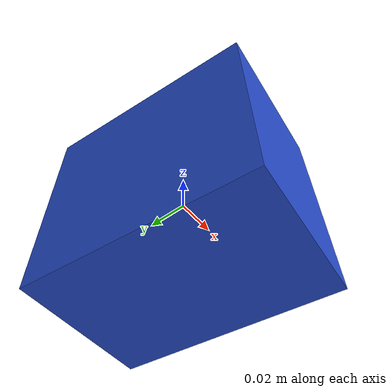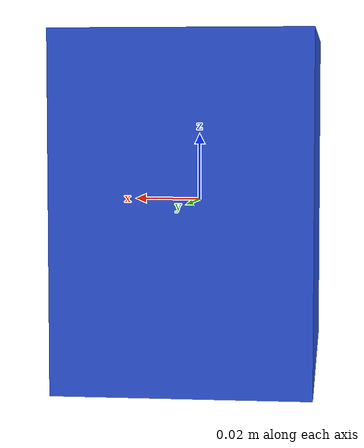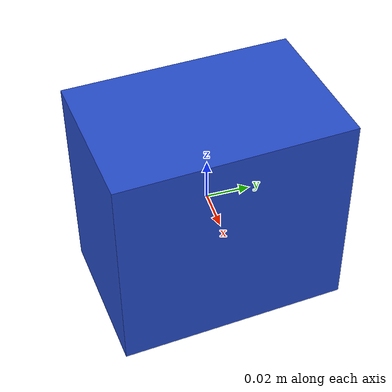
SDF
<sdf version="1.6"><model name="model_18"><static>true</static><link name="link"><pose>0 0 0 0 0 1.66357280140763</pose><collision name="collision"><geometry><box><size>0.10789863216596352 0.07167421598180303 0.1</size></box></geometry></collision><visual name="visual"><geometry><box><size>0.10789863216596352 0.07167421598180303 0.1</size></box></geometry><material><script><name>Gazebo/Blue</name><uri>file://media/materials/scripts/gazebo.material</uri></script></material></visual></link></model></sdf>
